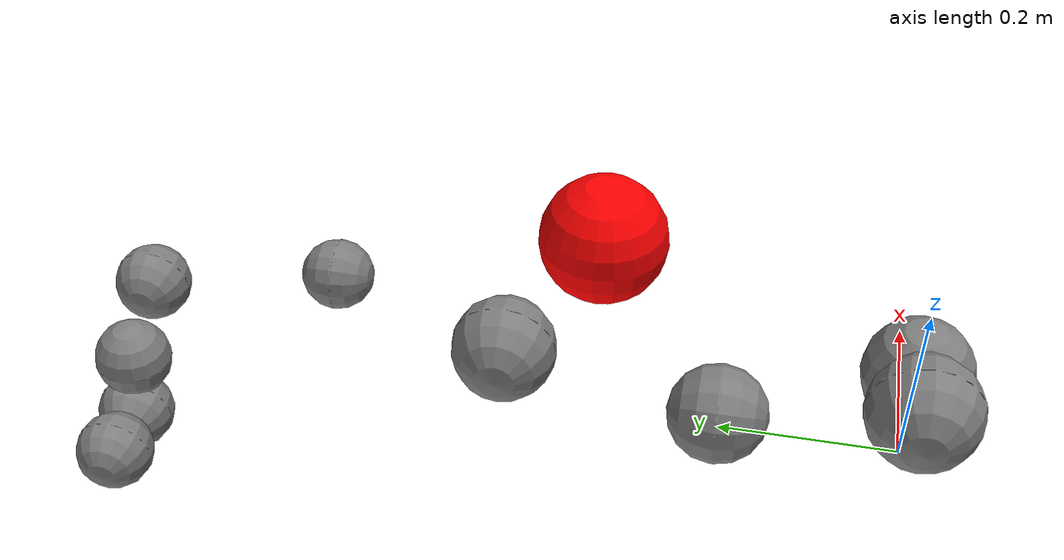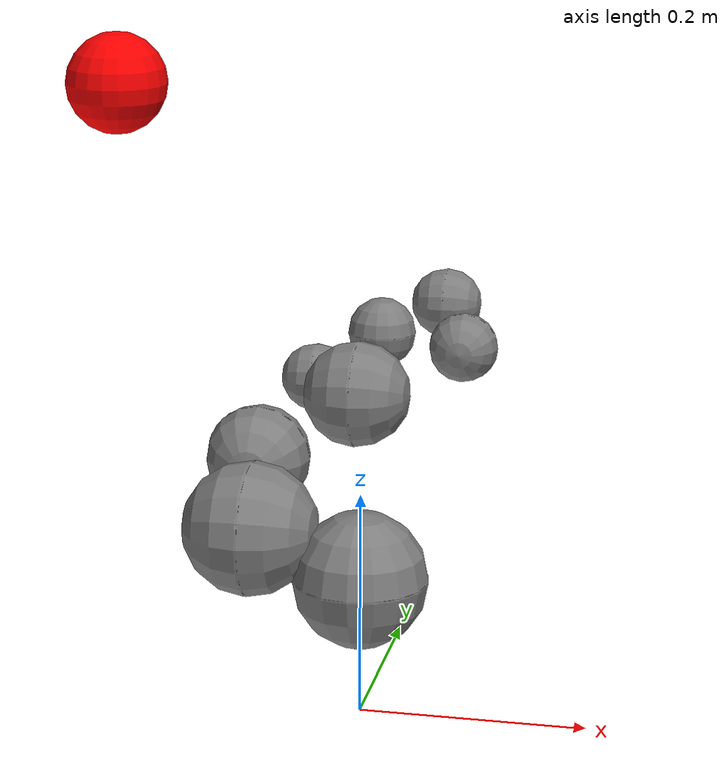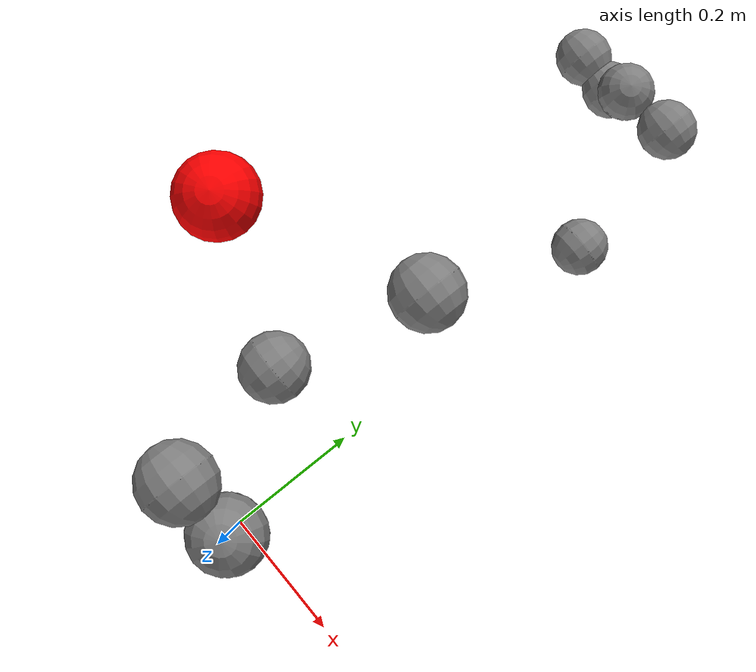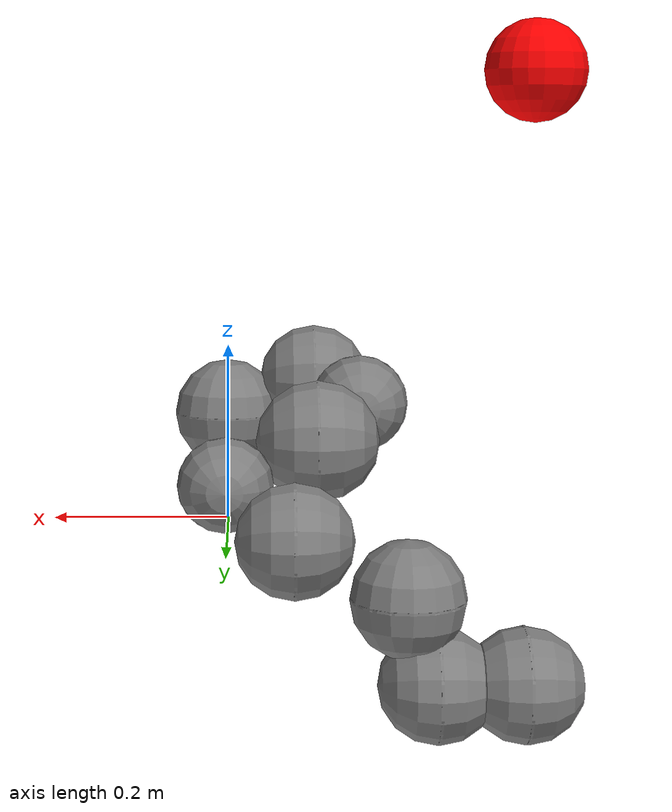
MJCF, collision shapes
<mujoco model="ur5e">
  <compiler angle="radian" meshdir="meshes/custom_assets" autolimits="true" inertiafromgeom="false"/>

  <default>
    <default class="ur5e">
      <material specular="0.5" shininess="0.25"/>
      <joint axis="0 1 0" range="-6.28319 6.28319" armature="0.1"/>
      <general gaintype="fixed" biastype="affine" ctrlrange="-6.2831 6.2831" gainprm="2000" biasprm="0 -2000 -400" forcerange="-150 150"/>
      <default class="size3">
        <default class="size3_limited">
          <joint range="-3.1415 3.1415"/>
          <general ctrlrange="-3.1415 3.1415"/>
        </default>
      </default>
      <default class="size1">
        <general gainprm="500" biasprm="0 -500 -100" forcerange="-28 28"/>
      </default>
      <default class="visual">
        <geom type="mesh" contype="0" conaffinity="0" group="2"/>
      </default>
      <default class="collision">
        <geom type="capsule" group="3"/>
        <default class="eef_collision">
          <geom type="capsule"/>
        </default>
      </default>
      <site size="0.001" rgba="0.5 0.5 0.5 0.1" group="4"/>
    </default>
  </default>

  <!-- Time Step = 0.01 makes model explode -->
	<option gravity="0 0 -9.81" timestep="0.002"/>

  <size nstack="3000"/>

  <custom>
    <!-- brax custom params -->
    <numeric data="10000" name="constraint_stiffness"/>
    <numeric data="10000" name="constraint_limit_stiffness"/>
    <numeric data="10" name="constraint_ang_damping"/>
    <numeric data="50" name="constraint_vel_damping"/>
    <numeric data="0" name="ang_damping"/>
    <numeric data="0" name="spring_mass_scale"/>
		<numeric data="1" name="spring_inertia_scale"/>
		<numeric data="10" name="matrix_inv_iterations"/>
    <numeric data="10" name="solver_iterations"/>
    <numeric data="10" name="solver_maxls"/>
  </custom>

  <asset>
    <material class="ur5e" name="black" rgba="1 1 1 1"/>
    <material class="ur5e" name="jointgray" rgba="0.278 0.278 0.278 1"/>
    <material class="ur5e" name="linkgray" rgba="0.82 0.82 0.82 1"/>
    <material class="ur5e" name="urblue" rgba="0.49 0.678 0.8 1"/>
    <material class="ur5e" name="blue" rgba="0.49 0.678 0.8 1"/>

    <mesh file="base_0.stl"/>
    <mesh file="base_1.stl"/>
    <mesh file="shoulder_0.stl"/>
    <mesh file="shoulder_1.stl"/>
    <mesh file="shoulder_2.stl"/>
    <mesh file="upperarm_0.stl"/>
    <mesh file="upperarm_1.stl"/>
    <mesh file="upperarm_2.stl"/>
    <mesh file="upperarm_3.stl"/>
    <mesh file="forearm_0.stl"/>
    <mesh file="forearm_1.stl"/>
    <mesh file="forearm_2.stl"/>
    <mesh file="forearm_3.stl"/>
    <mesh file="wrist1_0.stl"/>
    <mesh file="wrist1_1.stl"/>
    <mesh file="wrist1_2.stl"/>
    <mesh file="wrist2_0.stl"/>
    <mesh file="wrist2_1.stl"/>
    <mesh file="wrist2_2.stl"/>
    <mesh file="wrist3.stl"/>
  </asset>

  <worldbody>
    <light name="spotlight" mode="targetbodycom" target="wrist_2_link" pos="0 -1 2"/>
    <body name="base" quat="1 0 0 1" childclass="ur5e">
      <!-- World Body Inertia Error: -->
      <!-- Target Position: -->
      <geom type="sphere" pos="0.3 0.3 0.5" size="0.05" rgba="1 0 0 1" class="visual"/>
      <geom mesh="base_0" material="black" rgba="0.278 0.278 0.278 1" class="visual"/>
      <geom mesh="base_1" material="jointgray" rgba="0.278 0.278 0.278 1" class="visual"/>
      <body name="shoulder_link" pos="0 0 0.163">
        <inertial mass="3.7" pos="0 0 0" diaginertia="0.0102675 0.0102675 0.00666"/>
        <joint name="shoulder_pan_joint" class="size3" axis="0 0 1"/>
        <geom mesh="shoulder_0" material="urblue" class="visual"/>
        <geom mesh="shoulder_1" material="black" class="visual"/>
        <geom mesh="shoulder_2" material="jointgray" class="visual"/>
        <geom class="collision" size="0.06 0.001" pos="0 0 -0.04"/>
        <body name="upper_arm_link" pos="0 0.138 0" quat="1 0 1 0">
          <inertial mass="8.393" pos="0 0 0.2125" diaginertia="0.133886 0.133886 0.0151074"/>
          <joint name="shoulder_lift_joint" class="size3"/>
          <geom mesh="upperarm_0" material="linkgray" class="visual"/>
          <geom mesh="upperarm_1" material="black" class="visual"/>
          <geom mesh="upperarm_2" material="jointgray" class="visual"/>
          <geom mesh="upperarm_3" material="urblue" class="visual"/>
          <geom class="collision" pos="0 -0.04 0" quat="1 1 0 0" size="0.06 0.001"/>
          <geom class="collision" size="0.05 0.001" pos="0 0 0.2"/>
          <body name="forearm_link" pos="0 -0.131 0.425">
            <inertial mass="2.275" pos="0 0 0.196" diaginertia="0.0311796 0.0311796 0.004095"/>
            <joint name="elbow_joint" class="size3_limited"/>
            <geom mesh="forearm_0" material="urblue" class="visual"/>
            <geom mesh="forearm_1" material="linkgray" class="visual"/>
            <geom mesh="forearm_2" material="black" class="visual"/>
            <geom mesh="forearm_3" material="jointgray" class="visual"/>
            <geom class="collision" pos="0 0.08 0" quat="1 1 0 0" size="0.055 0.001"/>
            <geom class="collision" size="0.038 0.001" pos="0 0 0.2"/>
            <body name="wrist_1_link" pos="0 0 0.392" quat="1 0 1 0">
              <inertial mass="1.219" pos="0 0.127 0" diaginertia="0.0025599 0.0025599 0.0021942"/>
              <joint name="wrist_1_joint" class="size1"/>
              <geom mesh="wrist1_0" material="black" class="visual"/>
              <geom mesh="wrist1_1" material="urblue" class="visual"/>
              <geom mesh="wrist1_2" material="jointgray" class="visual"/>
              <geom class="collision" pos="0 0.05 0" quat="1 1 0 0" size="0.04 0.001"/>
              <body name="wrist_2_link" pos="0 0.127 0">
                <inertial mass="1.219" pos="0 0 0.1" diaginertia="0.0025599 0.0025599 0.0021942"/>
                <joint name="wrist_2_joint" axis="0 0 1" class="size1"/>
                <geom mesh="wrist2_0" material="black" class="visual"/>
                <geom mesh="wrist2_1" material="urblue" class="visual"/>
                <geom mesh="wrist2_2" material="jointgray" class="visual"/>
                <geom class="collision" size="0.04 0.001" pos="0 0 0.04"/>
                <geom class="collision" pos="0 0.02 0.1" quat="1 1 0 0" size="0.04 0.001"/>
                <body name="wrist_3_link" pos="0 0 0.1">
                  <inertial mass="0.1889" pos="0 0.0771683 0" quat="1 0 0 1" diaginertia="0.000132134 9.90863e-05 9.90863e-05"/>
                  <joint name="wrist_3_joint" class="size1"/>
                  <geom material="linkgray" mesh="wrist3" class="visual"/>
                  <geom class="eef_collision" pos="0 0.08 0" quat="1 1 0 0" size="0.04 0.001"/>
                  <site name="attachment_site" pos="0 0.1 0" quat="-1 1 0 0"/>
                </body>
              </body>
            </body>
          </body>
        </body>
      </body>
    </body>
  </worldbody>

  <actuator>
    <general class="size3" name="shoulder_pan" joint="shoulder_pan_joint"/>
    <general class="size3" name="shoulder_lift" joint="shoulder_lift_joint"/>
    <general class="size3_limited" name="elbow" joint="elbow_joint"/>
    <general class="size1" name="wrist_1" joint="wrist_1_joint"/>
    <general class="size1" name="wrist_2" joint="wrist_2_joint"/>
    <general class="size1" name="wrist_3" joint="wrist_3_joint"/>
  </actuator>

  <keyframe>
    <key name="home" qpos="-1.5708 -1.5708 1.5708 -1.5708 -1.5708 0" ctrl="-1.5708 -1.5708 1.5708 -1.5708 -1.5708 0"/>
  </keyframe>
</mujoco>
